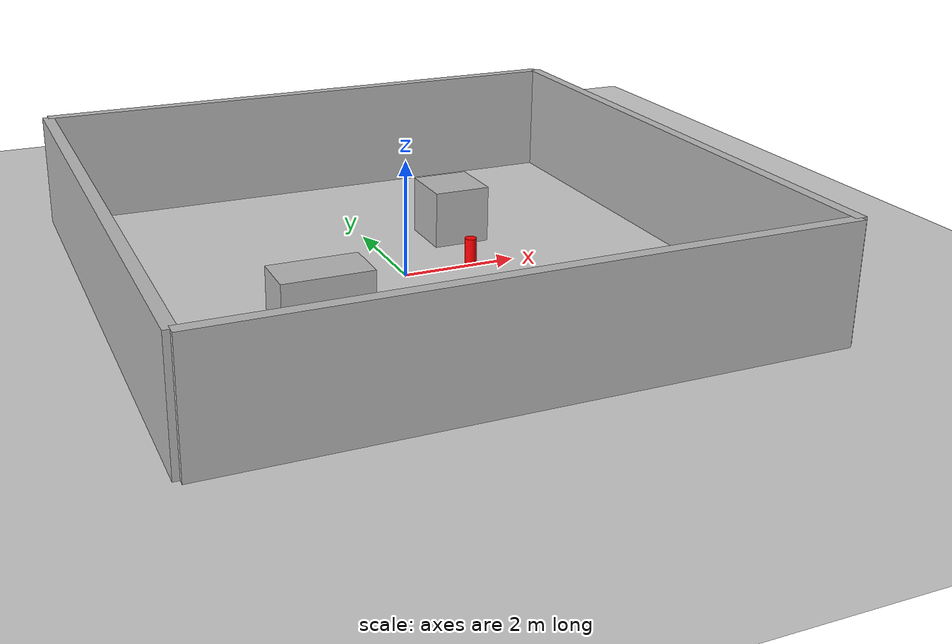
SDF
<?xml version="1.0" ?>
<sdf version="1.6">
  <world name="amr_world">

    <physics name="1ms" type="ignored">
      <max_step_size>0.001</max_step_size>
      <real_time_factor>1.0</real_time_factor>
    </physics>

    <plugin filename="gz-sim-physics-system" name="gz::sim::systems::Physics"/>
    <plugin filename="gz-sim-user-commands-system" name="gz::sim::systems::UserCommands"/>
    <plugin filename="gz-sim-scene-broadcaster-system" name="gz::sim::systems::SceneBroadcaster"/>

    <light type="directional" name="sun">
      <cast_shadows>true</cast_shadows>
      <pose>0 0 10 0 0 0</pose>
      <diffuse>0.8 0.8 0.8 1</diffuse>
      <specular>0.2 0.2 0.2 1</specular>
      <direction>-0.5 0.1 -0.9</direction>
    </light>

    <model name="ground_plane">
      <static>true</static>
      <link name="link">
        <collision name="collision">
          <geometry><plane><normal>0 0 1</normal><size>100 100</size></plane></geometry>
        </collision>
        <visual name="visual">
          <geometry><plane><normal>0 0 1</normal><size>100 100</size></plane></geometry>
          <material>
            <ambient>0.8 0.8 0.8 1</ambient>
            <diffuse>0.8 0.8 0.8 1</diffuse>
          </material>
        </visual>
      </link>
    </model>

    <model name="wall_north">
      <static>true</static>
      <pose>0 5 1 0 0 0</pose>
      <link name="link">
        <collision name="c"><geometry><box><size>10 0.2 2</size></box></geometry></collision>
        <visual name="v"><geometry><box><size>10 0.2 2</size></box></geometry></visual>
      </link>
    </model>

    <model name="wall_south">
      <static>true</static>
      <pose>0 -5 1 0 0 0</pose>
      <link name="link">
        <collision name="c"><geometry><box><size>10 0.2 2</size></box></geometry></collision>
        <visual name="v"><geometry><box><size>10 0.2 2</size></box></geometry></visual>
      </link>
    </model>

    <model name="wall_east">
      <static>true</static>
      <pose>5 0 1 0 0 0</pose>
      <link name="link">
        <collision name="c"><geometry><box><size>0.2 10 2</size></box></geometry></collision>
        <visual name="v"><geometry><box><size>0.2 10 2</size></box></geometry></visual>
      </link>
    </model>

    <model name="wall_west">
      <static>true</static>
      <pose>-5 0 1 0 0 0</pose>
      <link name="link">
        <collision name="c"><geometry><box><size>0.2 10 2</size></box></geometry></collision>
        <visual name="v"><geometry><box><size>0.2 10 2</size></box></geometry></visual>
      </link>
    </model>

    <model name="obstacle_box_1">
      <static>true</static>
      <pose>1.5 1.5 0.5 0 0 0</pose>
      <link name="link">
        <collision name="c"><geometry><box><size>1 1 1</size></box></geometry></collision>
        <visual name="v"><geometry><box><size>1 1 1</size></box></geometry></visual>
      </link>
    </model>

    <model name="obstacle_box_2">
      <static>true</static>
      <pose>-2 -1.5 0.5 0 0 0</pose>
      <link name="link">
        <collision name="c"><geometry><box><size>1.5 0.8 1</size></box></geometry></collision>
        <visual name="v"><geometry><box><size>1.5 0.8 1</size></box></geometry></visual>
      </link>
    </model>
<model name="red_target_marker">
      <static>true</static>
      <pose>1.2 0.0 0.25 0 0 0</pose>
      <link name="link">
        <collision name="c">
          <geometry><cylinder><radius>0.1</radius><length>0.5</length></cylinder></geometry>
        </collision>
        <visual name="v">
          <geometry><cylinder><radius>0.1</radius><length>0.5</length></cylinder></geometry>
          <material>
            <ambient>1.0 0.0 0.0 1</ambient>
            <diffuse>1.0 0.0 0.0 1</diffuse>
          </material>
        </visual>
      </link>
    </model>
  </world>
</sdf>
